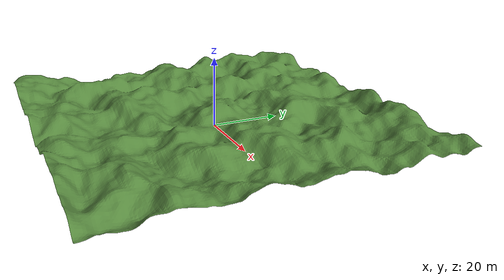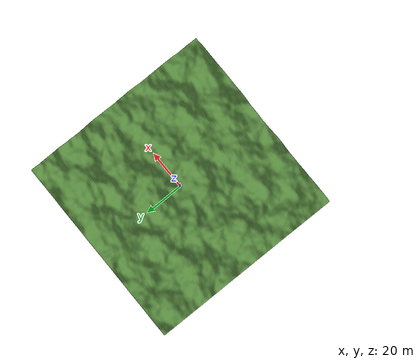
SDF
<?xml version="1.0" ?>
<sdf version="1.10">
  <model name="terrain_mesh">
    <static>true</static>
    <link name="terrain_link">
      <visual name="terrain_visual">
        <transparency>0</transparency>
        <cast_shadows>true</cast_shadows>
        <geometry>
          <mesh>
            <uri>model://terrain_mesh/model_visual.stl</uri>
          </mesh>
        </geometry>
        <material>
          <ambient>0.35 0.55 0.25 1</ambient>
          <diffuse>0.35 0.55 0.25 1</diffuse>
          <specular>0.05 0.05 0.05 1</specular>
          <double_sided>true</double_sided>
        </material>
      </visual>
      <collision name="terrain_collision">
        <geometry>
          <mesh>
            <uri>model://terrain_mesh/model_collision.stl</uri>
          </mesh>
        </geometry>
        <surface>
          <friction>
            <ode>
              <mu>100</mu>
              <mu2>100</mu2>
            </ode>
          </friction>
        </surface>
      </collision>
    </link>
  </model>
</sdf>
